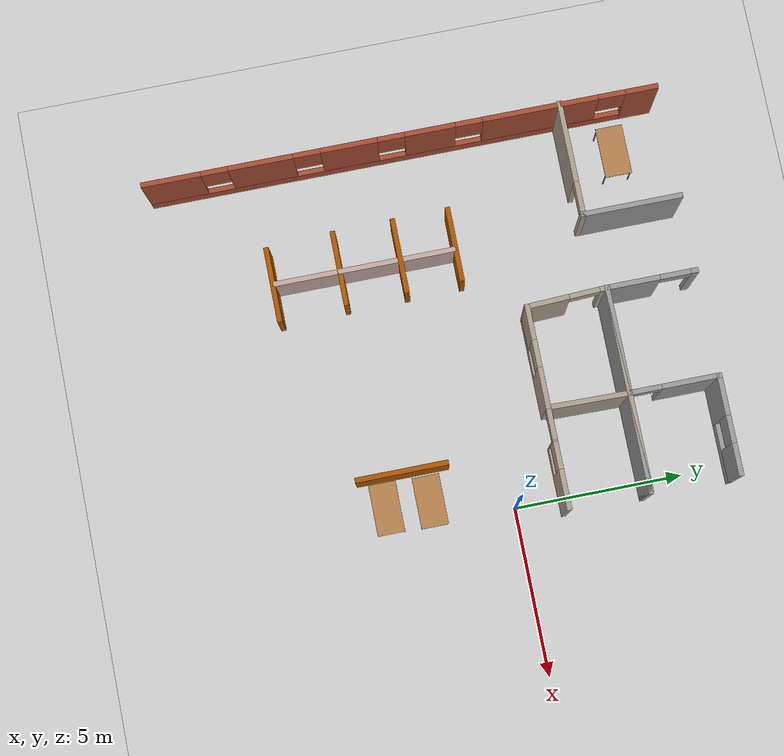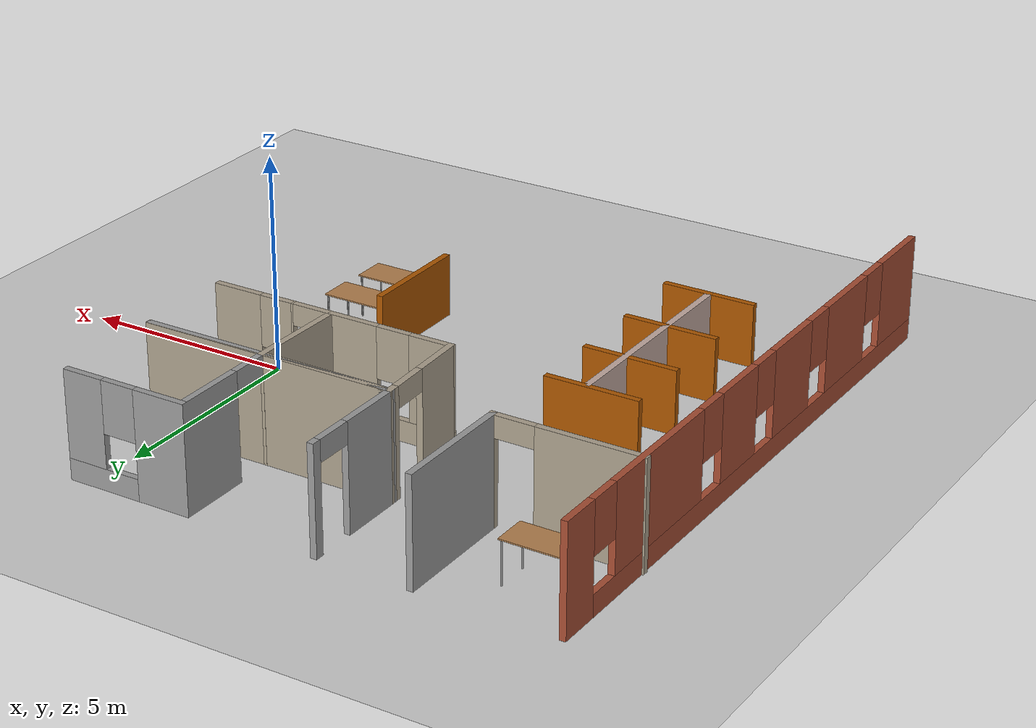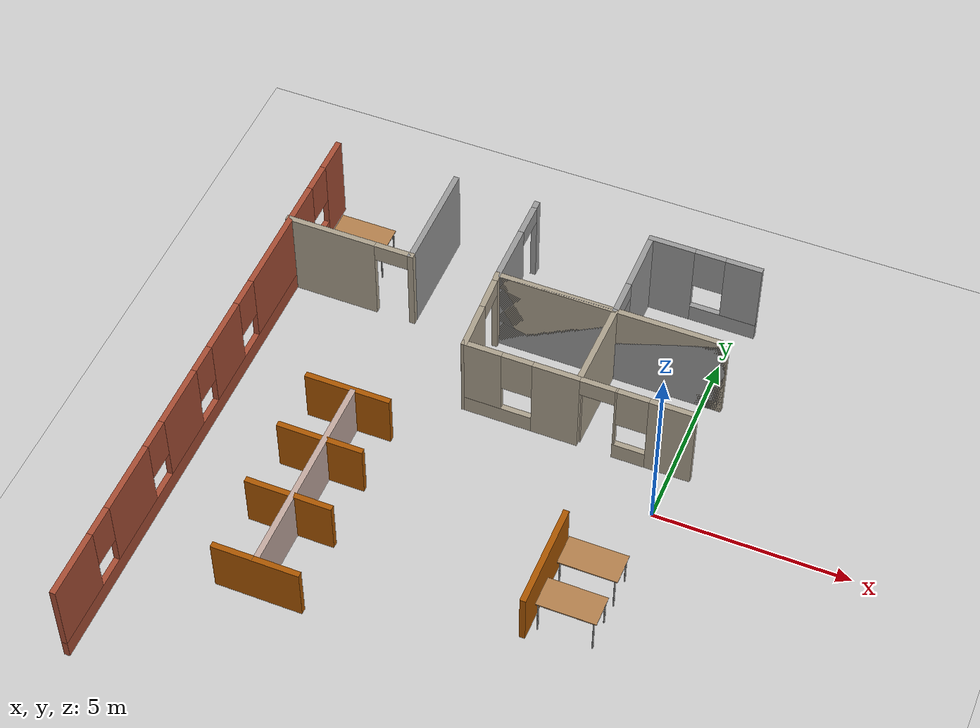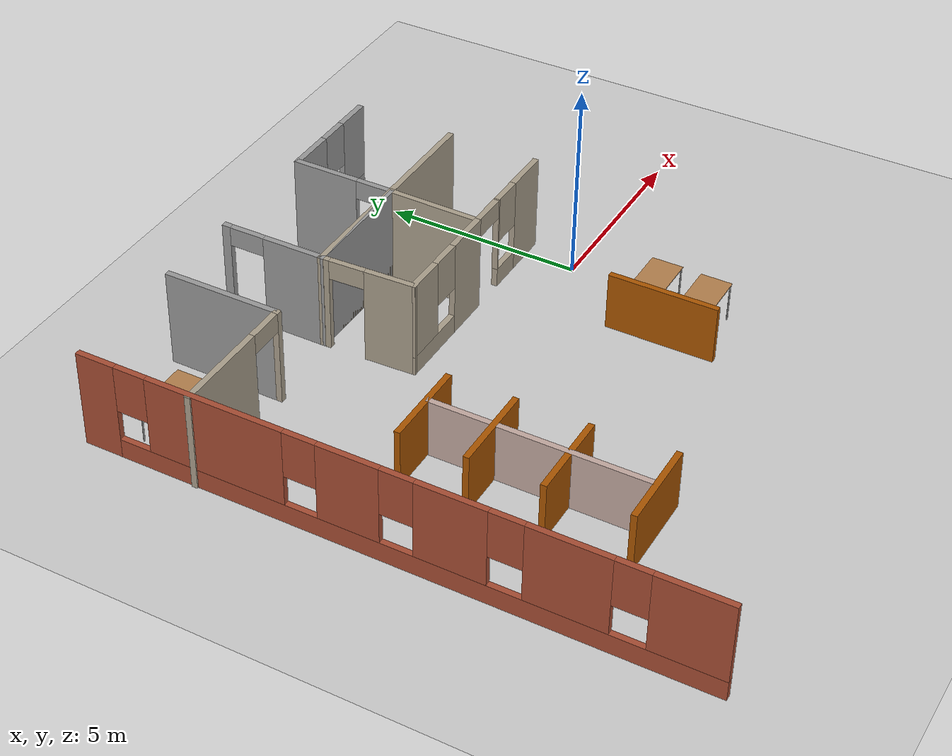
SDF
<sdf version="1.6">
 <world name="default">
  <model name="ground_plane">
   <static>1</static>
   <link name="link">
    <collision name="collision">
     <geometry><plane><normal>0 0 1</normal><size>100 100</size></plane></geometry>
     <surface>
      <contact><collide_bitmask>65535</collide_bitmask></contact>
      <friction><ode><mu>100</mu><mu2>50</mu2></ode></friction>
     </surface>
    </collision>
    <visual name="visual">
     <cast_shadows>0</cast_shadows>
     <geometry><plane><normal>0 0 1</normal><size>100 100</size></plane></geometry>
     <material>
      <script><uri>file://media/materials/scripts/gazebo.material</uri><name>Gazebo/Grey</name></script>
     </material>
    </visual>
   </link>
  </model>
  <model name="officespace">
   <pose>0.84701 -1.22405 0 0 -0 0</pose>
   <link name="Wall_11">
    <pose>-11.906 -0.005499 0 0 0 -1.5708</pose>
    <visual name="Wall_11_Visual_0">
     <pose>-7.1375 0 1.25 0 -0 0</pose>
     <geometry><box><size>0.975 0.15 2.5</size></box></geometry>
     <material>
      <script><uri>file://media/materials/scripts/gazebo.material</uri><name>Gazebo/Bricks</name></script>
      <ambient>0.435294 0.796078 0.67451 1</ambient>
     </material>
     <meta><layer>0</layer></meta>
    </visual>
    <collision name="Wall_11_Collision_0">
     <geometry><box><size>0.975 0.15 2.5</size></box></geometry>
     <pose>-7.1375 0 1.25 0 -0 0</pose>
    </collision>
    <visual name="Wall_11_Visual_1">
     <pose>0.4875 0 0.25 0 -0 0</pose>
     <geometry><box><size>14.275 0.15 0.5</size></box></geometry>
     <material>
      <script><uri>file://media/materials/scripts/gazebo.material</uri><name>Gazebo/Bricks</name></script>
      <ambient>0.435294 0.796078 0.67451 1</ambient>
     </material>
     <meta><layer>0</layer></meta>
    </visual>
    <collision name="Wall_11_Collision_1">
     <geometry><box><size>14.275 0.15 0.5</size></box></geometry>
     <pose>0.4875 0 0.25 0 -0 0</pose>
    </collision>
    <visual name="Wall_11_Visual_2">
     <pose>-4.134 0 1.5 0 -0 0</pose>
     <geometry><box><size>3.432 0.15 2</size></box></geometry>
     <material>
      <script><uri>file://media/materials/scripts/gazebo.material</uri><name>Gazebo/Bricks</name></script>
      <ambient>0.435294 0.796078 0.67451 1</ambient>
     </material>
     <meta><layer>0</layer></meta>
    </visual>
    <collision name="Wall_11_Collision_2">
     <geometry><box><size>3.432 0.15 2</size></box></geometry>
     <pose>-4.134 0 1.5 0 -0 0</pose>
    </collision>
    <visual name="Wall_11_Visual_3">
     <pose>-0.868 0 1.5 0 -0 0</pose>
     <geometry><box><size>1.5 0.15 2</size></box></geometry>
     <material>
      <script><uri>file://media/materials/scripts/gazebo.material</uri><name>Gazebo/Bricks</name></script>
      <ambient>0.435294 0.796078 0.67451 1</ambient>
     </material>
     <meta><layer>0</layer></meta>
    </visual>
    <collision name="Wall_11_Collision_3">
     <geometry><box><size>1.5 0.15 2</size></box></geometry>
     <pose>-0.868 0 1.5 0 -0 0</pose>
    </collision>
    <visual name="Wall_11_Visual_4">
     <pose>1.524 0 1.5 0 -0 0</pose>
     <geometry><box><size>1.684 0.15 2</size></box></geometry>
     <material>
      <script><uri>file://media/materials/scripts/gazebo.material</uri><name>Gazebo/Bricks</name></script>
      <ambient>0.435294 0.796078 0.67451 1</ambient>
     </material>
     <meta><layer>0</layer></meta>
    </visual>
    <collision name="Wall_11_Collision_4">
     <geometry><box><size>1.684 0.15 2</size></box></geometry>
     <pose>1.524 0 1.5 0 -0 0</pose>
    </collision>
    <visual name="Wall_11_Visual_5">
     <pose>4.123 0 1.5 0 -0 0</pose>
     <geometry><box><size>1.914 0.15 2</size></box></geometry>
     <material>
      <script><uri>file://media/materials/scripts/gazebo.material</uri><name>Gazebo/Bricks</name></script>
      <ambient>0.435294 0.796078 0.67451 1</ambient>
     </material>
     <meta><layer>0</layer></meta>
    </visual>
    <collision name="Wall_11_Collision_5">
     <geometry><box><size>1.914 0.15 2</size></box></geometry>
     <pose>4.123 0 1.5 0 -0 0</pose>
    </collision>
    <visual name="Wall_11_Visual_6">
     <pose>6.7525 0 1.5 0 -0 0</pose>
     <geometry><box><size>1.745 0.15 2</size></box></geometry>
     <material>
      <script><uri>file://media/materials/scripts/gazebo.material</uri><name>Gazebo/Bricks</name></script>
      <ambient>0.435294 0.796078 0.67451 1</ambient>
     </material>
     <meta><layer>0</layer></meta>
    </visual>
    <collision name="Wall_11_Collision_6">
     <geometry><box><size>1.745 0.15 2</size></box></geometry>
     <pose>6.7525 0 1.5 0 -0 0</pose>
    </collision>
    <visual name="Wall_11_Visual_7">
     <pose>-6.25 0 1.9 0 -0 0</pose>
     <geometry><box><size>0.8 0.15 1.2</size></box></geometry>
     <material>
      <script><uri>file://media/materials/scripts/gazebo.material</uri><name>Gazebo/Bricks</name></script>
      <ambient>0.435294 0.796078 0.67451 1</ambient>
     </material>
     <meta><layer>0</layer></meta>
    </visual>
    <collision name="Wall_11_Collision_7">
     <geometry><box><size>0.8 0.15 1.2</size></box></geometry>
     <pose>-6.25 0 1.9 0 -0 0</pose>
    </collision>
    <visual name="Wall_11_Visual_8">
     <pose>-2.018 0 1.9 0 -0 0</pose>
     <geometry><box><size>0.8 0.15 1.2</size></box></geometry>
     <material>
      <script><uri>file://media/materials/scripts/gazebo.material</uri><name>Gazebo/Bricks</name></script>
      <ambient>0.435294 0.796078 0.67451 1</ambient>
     </material>
     <meta><layer>0</layer></meta>
    </visual>
    <collision name="Wall_11_Collision_8">
     <geometry><box><size>0.8 0.15 1.2</size></box></geometry>
     <pose>-2.018 0 1.9 0 -0 0</pose>
    </collision>
    <visual name="Wall_11_Visual_9">
     <pose>0.282 0 1.9 0 -0 0</pose>
     <geometry><box><size>0.8 0.15 1.2</size></box></geometry>
     <material>
      <script><uri>file://media/materials/scripts/gazebo.material</uri><name>Gazebo/Bricks</name></script>
      <ambient>0.435294 0.796078 0.67451 1</ambient>
     </material>
     <meta><layer>0</layer></meta>
    </visual>
    <collision name="Wall_11_Collision_9">
     <geometry><box><size>0.8 0.15 1.2</size></box></geometry>
     <pose>0.282 0 1.9 0 -0 0</pose>
    </collision>
    <visual name="Wall_11_Visual_10">
     <pose>2.766 0 1.9 0 -0 0</pose>
     <geometry><box><size>0.8 0.15 1.2</size></box></geometry>
     <material>
      <script><uri>file://media/materials/scripts/gazebo.material</uri><name>Gazebo/Bricks</name></script>
      <ambient>0.435294 0.796078 0.67451 1</ambient>
     </material>
     <meta><layer>0</layer></meta>
    </visual>
    <collision name="Wall_11_Collision_10">
     <geometry><box><size>0.8 0.15 1.2</size></box></geometry>
     <pose>2.766 0 1.9 0 -0 0</pose>
    </collision>
    <visual name="Wall_11_Visual_11">
     <pose>5.48 0 1.9 0 -0 0</pose>
     <geometry><box><size>0.8 0.15 1.2</size></box></geometry>
     <material>
      <script><uri>file://media/materials/scripts/gazebo.material</uri><name>Gazebo/Bricks</name></script>
      <ambient>0.435294 0.796078 0.67451 1</ambient>
     </material>
     <meta><layer>0</layer></meta>
    </visual>
    <collision name="Wall_11_Collision_11">
     <geometry><box><size>0.8 0.15 1.2</size></box></geometry>
     <pose>5.48 0 1.9 0 -0 0</pose>
    </collision>
   </link>
   <link name="Wall_13">
    <collision name="Wall_13_Collision">
     <geometry><box><size>3 0.15 2.5</size></box></geometry>
     <pose>0 0 1.25 0 -0 0</pose>
    </collision>
    <visual name="Wall_13_Visual">
     <pose>0 0 1.25 0 -0 0</pose>
     <geometry><box><size>3 0.15 2.5</size></box></geometry>
     <material>
      <script><uri>file://media/materials/scripts/gazebo.material</uri><name>Gazebo/Grey</name></script>
      <ambient>1 1 1 1</ambient>
     </material>
     <meta><layer>0</layer></meta>
    </visual>
    <pose>-8.594 6.1305 0 0 0 -1.5708</pose>
   </link>
   <link name="Wall_14">
    <pose>-10.269 4.7055 0 0 -0 3.14159</pose>
    <visual name="Wall_14_Visual_0">
     <pose>-1.673 0 1.25 0 -0 0</pose>
     <geometry><box><size>0.154 0.15 2.5</size></box></geometry>
     <material>
      <script><uri>file://media/materials/scripts/gazebo.material</uri><name>Gazebo/Grey</name></script>
      <ambient>0.666667 0.623529 0.54902 1</ambient>
     </material>
     <meta><layer>0</layer></meta>
    </visual>
    <collision name="Wall_14_Collision_0">
     <geometry><box><size>0.154 0.15 2.5</size></box></geometry>
     <pose>-1.673 0 1.25 0 -0 0</pose>
    </collision>
    <visual name="Wall_14_Visual_1">
     <pose>0.527 0 1.25 0 -0 0</pose>
     <geometry><box><size>2.446 0.15 2.5</size></box></geometry>
     <material>
      <script><uri>file://media/materials/scripts/gazebo.material</uri><name>Gazebo/Grey</name></script>
      <ambient>0.666667 0.623529 0.54902 1</ambient>
     </material>
     <meta><layer>0</layer></meta>
    </visual>
    <collision name="Wall_14_Collision_1">
     <geometry><box><size>2.446 0.15 2.5</size></box></geometry>
     <pose>0.527 0 1.25 0 -0 0</pose>
    </collision>
    <visual name="Wall_14_Visual_2">
     <pose>-1.146 0 2.25 0 -0 0</pose>
     <geometry><box><size>0.9 0.15 0.5</size></box></geometry>
     <material>
      <script><uri>file://media/materials/scripts/gazebo.material</uri><name>Gazebo/Grey</name></script>
      <ambient>0.666667 0.623529 0.54902 1</ambient>
     </material>
     <meta><layer>0</layer></meta>
    </visual>
    <collision name="Wall_14_Collision_2">
     <geometry><box><size>0.9 0.15 0.5</size></box></geometry>
     <pose>-1.146 0 2.25 0 -0 0</pose>
    </collision>
   </link>
   <link name="Wall_19">
    <pose>-6.363 6.2325 0 0 0 -1.5708</pose>
    <visual name="Wall_19_Visual_0">
     <pose>-1.2635 0 1.25 0 -0 0</pose>
     <geometry><box><size>0.223 0.15 2.5</size></box></geometry>
     <material>
      <script><uri>file://media/materials/scripts/gazebo.material</uri><name>Gazebo/Grey</name></script>
      <ambient>1 1 1 1</ambient>
     </material>
     <meta><layer>0</layer></meta>
    </visual>
    <collision name="Wall_19_Collision_0">
     <geometry><box><size>0.223 0.15 2.5</size></box></geometry>
     <pose>-1.2635 0 1.25 0 -0 0</pose>
    </collision>
    <visual name="Wall_19_Visual_1">
     <pose>0.5615 0 1.25 0 -0 0</pose>
     <geometry><box><size>1.627 0.15 2.5</size></box></geometry>
     <material>
      <script><uri>file://media/materials/scripts/gazebo.material</uri><name>Gazebo/Grey</name></script>
      <ambient>1 1 1 1</ambient>
     </material>
     <meta><layer>0</layer></meta>
    </visual>
    <collision name="Wall_19_Collision_1">
     <geometry><box><size>1.627 0.15 2.5</size></box></geometry>
     <pose>0.5615 0 1.25 0 -0 0</pose>
    </collision>
    <visual name="Wall_19_Visual_2">
     <pose>-0.702 0 2.25 0 -0 0</pose>
     <geometry><box><size>0.9 0.15 0.5</size></box></geometry>
     <material>
      <script><uri>file://media/materials/scripts/gazebo.material</uri><name>Gazebo/Grey</name></script>
      <ambient>1 1 1 1</ambient>
     </material>
     <meta><layer>0</layer></meta>
    </visual>
    <collision name="Wall_19_Collision_2">
     <geometry><box><size>0.9 0.15 0.5</size></box></geometry>
     <pose>-0.702 0 2.25 0 -0 0</pose>
    </collision>
   </link>
   <link name="Wall_20">
    <collision name="Wall_20_Collision">
     <geometry><box><size>3.25 0.15 2.5</size></box></geometry>
     <pose>0 0 1.25 0 -0 0</pose>
    </collision>
    <visual name="Wall_20_Visual">
     <pose>0 0 1.25 0 -0 0</pose>
     <geometry><box><size>3.25 0.15 2.5</size></box></geometry>
     <material>
      <script><uri>file://media/materials/scripts/gazebo.material</uri><name>Gazebo/Grey</name></script>
      <ambient>1 1 1 1</ambient>
     </material>
     <meta><layer>0</layer></meta>
    </visual>
    <pose>-4.813 4.9325 0 0 -0 0</pose>
   </link>
   <link name="Wall_21">
    <pose>-3.263 6.2325 0 0 -0 1.5708</pose>
    <visual name="Wall_21_Visual_0">
     <pose>-1.3205 0 1.25 0 -0 0</pose>
     <geometry><box><size>0.109 0.15 2.5</size></box></geometry>
     <material>
      <script><uri>file://media/materials/scripts/gazebo.material</uri><name>Gazebo/Grey</name></script>
      <ambient>1 1 1 1</ambient>
     </material>
     <meta><layer>0</layer></meta>
    </visual>
    <collision name="Wall_21_Collision_0">
     <geometry><box><size>0.109 0.15 2.5</size></box></geometry>
     <pose>-1.3205 0 1.25 0 -0 0</pose>
    </collision>
    <visual name="Wall_21_Visual_1">
     <pose>0.5045 0 1.25 0 -0 0</pose>
     <geometry><box><size>1.741 0.15 2.5</size></box></geometry>
     <material>
      <script><uri>file://media/materials/scripts/gazebo.material</uri><name>Gazebo/Grey</name></script>
      <ambient>1 1 1 1</ambient>
     </material>
     <meta><layer>0</layer></meta>
    </visual>
    <collision name="Wall_21_Collision_1">
     <geometry><box><size>1.741 0.15 2.5</size></box></geometry>
     <pose>0.5045 0 1.25 0 -0 0</pose>
    </collision>
    <visual name="Wall_21_Visual_2">
     <pose>-0.816 0 2.25 0 -0 0</pose>
     <geometry><box><size>0.9 0.15 0.5</size></box></geometry>
     <material>
      <script><uri>file://media/materials/scripts/gazebo.material</uri><name>Gazebo/Grey</name></script>
      <ambient>1 1 1 1</ambient>
     </material>
     <meta><layer>0</layer></meta>
    </visual>
    <collision name="Wall_21_Collision_2">
     <geometry><box><size>0.9 0.15 0.5</size></box></geometry>
     <pose>-0.816 0 2.25 0 -0 0</pose>
    </collision>
   </link>
   <link name="Wall_22">
    <pose>-1.838 7.5325 0 0 -0 0</pose>
    <visual name="Wall_22_Visual_0">
     <pose>-0.878 0 1.25 0 -0 0</pose>
     <geometry><box><size>1.244 0.15 2.5</size></box></geometry>
     <material>
      <script><uri>file://media/materials/scripts/gazebo.material</uri><name>Gazebo/Grey</name></script>
      <ambient>1 1 1 1</ambient>
     </material>
     <meta><layer>0</layer></meta>
    </visual>
    <collision name="Wall_22_Collision_0">
     <geometry><box><size>1.244 0.15 2.5</size></box></geometry>
     <pose>-0.878 0 1.25 0 -0 0</pose>
    </collision>
    <visual name="Wall_22_Visual_1">
     <pose>0.622 0 0.25 0 -0 0</pose>
     <geometry><box><size>1.756 0.15 0.5</size></box></geometry>
     <material>
      <script><uri>file://media/materials/scripts/gazebo.material</uri><name>Gazebo/Grey</name></script>
      <ambient>1 1 1 1</ambient>
     </material>
     <meta><layer>0</layer></meta>
    </visual>
    <collision name="Wall_22_Collision_1">
     <geometry><box><size>1.756 0.15 0.5</size></box></geometry>
     <pose>0.622 0 0.25 0 -0 0</pose>
    </collision>
    <visual name="Wall_22_Visual_2">
     <pose>1.022 0 1.5 0 -0 0</pose>
     <geometry><box><size>0.956 0.15 2</size></box></geometry>
     <material>
      <script><uri>file://media/materials/scripts/gazebo.material</uri><name>Gazebo/Grey</name></script>
      <ambient>1 1 1 1</ambient>
     </material>
     <meta><layer>0</layer></meta>
    </visual>
    <collision name="Wall_22_Collision_2">
     <geometry><box><size>0.956 0.15 2</size></box></geometry>
     <pose>1.022 0 1.5 0 -0 0</pose>
    </collision>
    <visual name="Wall_22_Visual_3">
     <pose>0.144 0 1.9 0 -0 0</pose>
     <geometry><box><size>0.8 0.15 1.2</size></box></geometry>
     <material>
      <script><uri>file://media/materials/scripts/gazebo.material</uri><name>Gazebo/Grey</name></script>
      <ambient>1 1 1 1</ambient>
     </material>
     <meta><layer>0</layer></meta>
    </visual>
    <collision name="Wall_22_Collision_3">
     <geometry><box><size>0.8 0.15 1.2</size></box></geometry>
     <pose>0.144 0 1.9 0 -0 0</pose>
    </collision>
   </link>
   <link name="Wall_34">
    <pose>-3.338 2.5825 0 0 -0 3.14159</pose>
    <visual name="Wall_34_Visual_0">
     <pose>-2.407 0 1.25 0 -0 0</pose>
     <geometry><box><size>1.186 0.15 2.5</size></box></geometry>
     <material>
      <script><uri>file://media/materials/scripts/gazebo.material</uri><name>Gazebo/Grey</name></script>
      <ambient>0.666667 0.623529 0.54902 1</ambient>
     </material>
     <meta><layer>0</layer></meta>
    </visual>
    <collision name="Wall_34_Collision_0">
     <geometry><box><size>1.186 0.15 2.5</size></box></geometry>
     <pose>-2.407 0 1.25 0 -0 0</pose>
    </collision>
    <visual name="Wall_34_Visual_1">
     <pose>0.543 0 1.25 0 -0 0</pose>
     <geometry><box><size>1.22 0.15 2.5</size></box></geometry>
     <material>
      <script><uri>file://media/materials/scripts/gazebo.material</uri><name>Gazebo/Grey</name></script>
      <ambient>0.666667 0.623529 0.54902 1</ambient>
     </material>
     <meta><layer>0</layer></meta>
    </visual>
    <collision name="Wall_34_Collision_1">
     <geometry><box><size>1.22 0.15 2.5</size></box></geometry>
     <pose>0.543 0 1.25 0 -0 0</pose>
    </collision>
    <visual name="Wall_34_Visual_2">
     <pose>-1.3905 0 0.25 0 -0 0</pose>
     <geometry><box><size>0.847 0.15 0.5</size></box></geometry>
     <material>
      <script><uri>file://media/materials/scripts/gazebo.material</uri><name>Gazebo/Grey</name></script>
      <ambient>0.666667 0.623529 0.54902 1</ambient>
     </material>
     <meta><layer>0</layer></meta>
    </visual>
    <collision name="Wall_34_Collision_2">
     <geometry><box><size>0.847 0.15 0.5</size></box></geometry>
     <pose>-1.3905 0 0.25 0 -0 0</pose>
    </collision>
    <visual name="Wall_34_Visual_3">
     <pose>2.0765 0 0.25 0 -0 0</pose>
     <geometry><box><size>1.847 0.15 0.5</size></box></geometry>
     <material>
      <script><uri>file://media/materials/scripts/gazebo.material</uri><name>Gazebo/Grey</name></script>
      <ambient>0.666667 0.623529 0.54902 1</ambient>
     </material>
     <meta><layer>0</layer></meta>
    </visual>
    <collision name="Wall_34_Collision_3">
     <geometry><box><size>1.847 0.15 0.5</size></box></geometry>
     <pose>2.0765 0 0.25 0 -0 0</pose>
    </collision>
    <visual name="Wall_34_Visual_4">
     <pose>-0.9905 0 1.5 0 -0 0</pose>
     <geometry><box><size>0.047 0.15 2</size></box></geometry>
     <material>
      <script><uri>file://media/materials/scripts/gazebo.material</uri><name>Gazebo/Grey</name></script>
      <ambient>0.666667 0.623529 0.54902 1</ambient>
     </material>
     <meta><layer>0</layer></meta>
    </visual>
    <collision name="Wall_34_Collision_4">
     <geometry><box><size>0.047 0.15 2</size></box></geometry>
     <pose>-0.9905 0 1.5 0 -0 0</pose>
    </collision>
    <visual name="Wall_34_Visual_5">
     <pose>-0.9905 0 1.5 0 -0 0</pose>
     <geometry><box><size>0.047 0.15 2</size></box></geometry>
     <material>
      <script><uri>file://media/materials/scripts/gazebo.material</uri><name>Gazebo/Grey</name></script>
      <ambient>0.666667 0.623529 0.54902 1</ambient>
     </material>
     <meta><layer>0</layer></meta>
    </visual>
    <collision name="Wall_34_Collision_5">
     <geometry><box><size>0.047 0.15 2</size></box></geometry>
     <pose>-0.9905 0 1.5 0 -0 0</pose>
    </collision>
    <visual name="Wall_34_Visual_6">
     <pose>2.4765 0 1.5 0 -0 0</pose>
     <geometry><box><size>1.047 0.15 2</size></box></geometry>
     <material>
      <script><uri>file://media/materials/scripts/gazebo.material</uri><name>Gazebo/Grey</name></script>
      <ambient>0.666667 0.623529 0.54902 1</ambient>
     </material>
     <meta><layer>0</layer></meta>
    </visual>
    <collision name="Wall_34_Collision_6">
     <geometry><box><size>1.047 0.15 2</size></box></geometry>
     <pose>2.4765 0 1.5 0 -0 0</pose>
    </collision>
    <visual name="Wall_34_Visual_7">
     <pose>-1.414 0 1.9 0 -0 0</pose>
     <geometry><box><size>0.8 0.15 1.2</size></box></geometry>
     <material>
      <script><uri>file://media/materials/scripts/gazebo.material</uri><name>Gazebo/Grey</name></script>
      <ambient>0.666667 0.623529 0.54902 1</ambient>
     </material>
     <meta><layer>0</layer></meta>
    </visual>
    <collision name="Wall_34_Collision_7">
     <geometry><box><size>0.8 0.15 1.2</size></box></geometry>
     <pose>-1.414 0 1.9 0 -0 0</pose>
    </collision>
    <visual name="Wall_34_Visual_8">
     <pose>1.553 0 1.9 0 -0 0</pose>
     <geometry><box><size>0.8 0.15 1.2</size></box></geometry>
     <material>
      <script><uri>file://media/materials/scripts/gazebo.material</uri><name>Gazebo/Grey</name></script>
      <ambient>0.666667 0.623529 0.54902 1</ambient>
     </material>
     <meta><layer>0</layer></meta>
    </visual>
    <collision name="Wall_34_Collision_8">
     <geometry><box><size>0.8 0.15 1.2</size></box></geometry>
     <pose>1.553 0 1.9 0 -0 0</pose>
    </collision>
    <visual name="Wall_34_Visual_9">
     <pose>-0.517 0 2.25 0 -0 0</pose>
     <geometry><box><size>0.9 0.15 0.5</size></box></geometry>
     <material>
      <script><uri>file://media/materials/scripts/gazebo.material</uri><name>Gazebo/Grey</name></script>
      <ambient>0.666667 0.623529 0.54902 1</ambient>
     </material>
     <meta><layer>0</layer></meta>
    </visual>
    <collision name="Wall_34_Collision_9">
     <geometry><box><size>0.9 0.15 0.5</size></box></geometry>
     <pose>-0.517 0 2.25 0 -0 0</pose>
    </collision>
    <visual name="Wall_34_Visual_10">
     <pose>-0.517 0 2.25 0 -0 0</pose>
     <geometry><box><size>0.9 0.15 0.5</size></box></geometry>
     <material>
      <script><uri>file://media/materials/scripts/gazebo.material</uri><name>Gazebo/Grey</name></script>
      <ambient>0.666667 0.623529 0.54902 1</ambient>
     </material>
     <meta><layer>0</layer></meta>
    </visual>
    <collision name="Wall_34_Collision_10">
     <geometry><box><size>0.9 0.15 0.5</size></box></geometry>
     <pose>-0.517 0 2.25 0 -0 0</pose>
    </collision>
   </link>
   <link name="Wall_35">
    <pose>-6.313 3.7575 0 0 -0 1.61332</pose>
    <visual name="Wall_35_Visual_0">
     <pose>-0.595199 0 1.25 0 -0 0</pose>
     <geometry><box><size>1.31173 0.15 2.5</size></box></geometry>
     <material>
      <script><uri>file://media/materials/scripts/gazebo.material</uri><name>Gazebo/Grey</name></script>
      <ambient>0.666667 0.623529 0.54902 1</ambient>
     </material>
     <meta><layer>0</layer></meta>
    </visual>
    <collision name="Wall_35_Collision_0">
     <geometry><box><size>1.31173 0.15 2.5</size></box></geometry>
     <pose>-0.595199 0 1.25 0 -0 0</pose>
    </collision>
    <visual name="Wall_35_Visual_1">
     <pose>1.10586 0 1.25 0 -0 0</pose>
     <geometry><box><size>0.290398 0.15 2.5</size></box></geometry>
     <material>
      <script><uri>file://media/materials/scripts/gazebo.material</uri><name>Gazebo/Grey</name></script>
      <ambient>0.666667 0.623529 0.54902 1</ambient>
     </material>
     <meta><layer>0</layer></meta>
    </visual>
    <collision name="Wall_35_Collision_1">
     <geometry><box><size>0.290398 0.15 2.5</size></box></geometry>
     <pose>1.10586 0 1.25 0 -0 0</pose>
    </collision>
    <visual name="Wall_35_Visual_2">
     <pose>0.510666 0 2.25 0 -0 0</pose>
     <geometry><box><size>0.9 0.15 0.5</size></box></geometry>
     <material>
      <script><uri>file://media/materials/scripts/gazebo.material</uri><name>Gazebo/Grey</name></script>
      <ambient>0.666667 0.623529 0.54902 1</ambient>
     </material>
     <meta><layer>0</layer></meta>
    </visual>
    <collision name="Wall_35_Collision_2">
     <geometry><box><size>0.9 0.15 0.5</size></box></geometry>
     <pose>0.510666 0 2.25 0 -0 0</pose>
    </collision>
   </link>
   <link name="Wall_36">
    <collision name="Wall_36_Collision">
     <geometry><box><size>6.1 0.15 2.5</size></box></geometry>
     <pose>0 0 1.25 0 -0 0</pose>
    </collision>
    <visual name="Wall_36_Visual">
     <pose>0 0 1.25 0 -0 0</pose>
     <geometry><box><size>6.1 0.15 2.5</size></box></geometry>
     <material>
      <script><uri>file://media/materials/scripts/gazebo.material</uri><name>Gazebo/Grey</name></script>
      <ambient>0.666667 0.623529 0.54902 1</ambient>
     </material>
     <meta><layer>0</layer></meta>
    </visual>
    <pose>-3.388 4.9325 0 0 -0 0</pose>
   </link>
   <link name="Wall_38">
    <collision name="Wall_38_Collision">
     <geometry><box><size>2.35738 0.15 2.5</size></box></geometry>
     <pose>0 0 1.25 0 -0 0</pose>
    </collision>
    <visual name="Wall_38_Visual">
     <pose>0 0 1.25 0 -0 0</pose>
     <geometry><box><size>2.35738 0.15 2.5</size></box></geometry>
     <material>
      <script><uri>file://media/materials/scripts/gazebo.material</uri><name>Gazebo/Grey</name></script>
      <ambient>0.666667 0.623529 0.54902 1</ambient>
     </material>
     <meta><layer>0</layer></meta>
    </visual>
    <pose>-3.2835 3.829 0 0 -0 1.55222</pose>
   </link>
   <link name="Wall_39">
    <collision name="Wall_39_Collision">
     <geometry><box><size>3 0.15 2.5</size></box></geometry>
     <pose>0 0 1.25 0 -0 0</pose>
    </collision>
    <visual name="Wall_39_Visual">
     <pose>0 0 1.25 0 -0 0</pose>
     <geometry><box><size>3 0.15 2.5</size></box></geometry>
     <material>
      <script><uri>file://media/materials/scripts/gazebo.material</uri><name>Gazebo/Grey</name></script>
      <ambient>1 1 1 1</ambient>
     </material>
     <meta><layer>0</layer></meta>
    </visual>
    <pose>-1.838 4.9325 0 0 -0 0</pose>
   </link>
   <link name="Wall_43">
    <collision name="Wall_43_Collision">
     <geometry><box><size>5.5 0.15 1.5</size></box></geometry>
     <pose>0 0 0.75 0 -0 0</pose>
    </collision>
    <visual name="Wall_43_Visual">
     <pose>0 0 0.75 0 -0 0</pose>
     <geometry><box><size>5.5 0.15 1.5</size></box></geometry>
     <material>
      <script><uri>file://media/materials/scripts/gazebo.material</uri><name>Gazebo/Grey</name></script>
      <ambient>0.760784 0.662745 0.627451 1</ambient>
     </material>
     <meta><layer>0</layer></meta>
    </visual>
    <pose>-8.52453 -1.78956 0 0 0 -1.5708</pose>
   </link>
   <link name="Wall_45">
    <collision name="Wall_45_Collision">
     <geometry><box><size>2.25 0.15 1.5</size></box></geometry>
     <pose>0 0 0.75 0 -0 0</pose>
    </collision>
    <visual name="Wall_45_Visual">
     <pose>0 0 0.75 0 -0 0</pose>
     <geometry><box><size>2.25 0.15 1.5</size></box></geometry>
     <material>
      <script><uri>file://media/materials/scripts/gazebo.material</uri><name>Gazebo/Grey</name></script>
      <ambient>0.666667 0.333333 0 1</ambient>
     </material>
     <meta><layer>0</layer></meta>
    </visual>
    <pose>-8.52153 -4.47767 0 0 -0 0</pose>
   </link>
   <link name="Wall_47">
    <collision name="Wall_47_Collision">
     <geometry><box><size>2.25 0.15 1.5</size></box></geometry>
     <pose>0 0 0.75 0 -0 0</pose>
    </collision>
    <visual name="Wall_47_Visual">
     <pose>0 0 0.75 0 -0 0</pose>
     <geometry><box><size>2.25 0.15 1.5</size></box></geometry>
     <material>
      <script><uri>file://media/materials/scripts/gazebo.material</uri><name>Gazebo/Grey</name></script>
      <ambient>0.666667 0.333333 0 1</ambient>
     </material>
     <meta><layer>0</layer></meta>
    </visual>
    <pose>-8.62453 -2.48447 0 0 -0 0</pose>
   </link>
   <link name="Wall_49">
    <collision name="Wall_49_Collision">
     <geometry><box><size>2.25 0.15 1.5</size></box></geometry>
     <pose>0 0 0.75 0 -0 0</pose>
    </collision>
    <visual name="Wall_49_Visual">
     <pose>0 0 0.75 0 -0 0</pose>
     <geometry><box><size>2.25 0.15 1.5</size></box></geometry>
     <material>
      <script><uri>file://media/materials/scripts/gazebo.material</uri><name>Gazebo/Grey</name></script>
      <ambient>0.666667 0.333333 0 1</ambient>
     </material>
     <meta><layer>0</layer></meta>
    </visual>
    <pose>-8.64752 -0.687096 0 0 -0 0</pose>
   </link>
   <link name="Wall_51">
    <collision name="Wall_51_Collision">
     <geometry><box><size>2.25 0.15 1.5</size></box></geometry>
     <pose>0 0 0.75 0 -0 0</pose>
    </collision>
    <visual name="Wall_51_Visual">
     <pose>0 0 0.75 0 -0 0</pose>
     <geometry><box><size>2.25 0.15 1.5</size></box></geometry>
     <material>
      <script><uri>file://media/materials/scripts/gazebo.material</uri><name>Gazebo/Grey</name></script>
      <ambient>0.666667 0.333333 0 1</ambient>
     </material>
     <meta><layer>0</layer></meta>
    </visual>
    <pose>-8.67052 0.960193 0 0 -0 0</pose>
   </link>
   <link name="Wall_55">
    <collision name="Wall_55_Collision">
     <geometry><box><size>2.75 0.15 1.5</size></box></geometry>
     <pose>0 0 0.75 0 -0 0</pose>
    </collision>
    <visual name="Wall_55_Visual">
     <pose>0 0 0.75 0 -0 0</pose>
     <geometry><box><size>2.75 0.15 1.5</size></box></geometry>
     <material>
      <script><uri>file://media/materials/scripts/gazebo.material</uri><name>Gazebo/Grey</name></script>
      <ambient>0.666667 0.333333 0 1</ambient>
     </material>
     <meta><layer>0</layer></meta>
    </visual>
    <pose>-2.42952 -1.84056 0 0 0 -1.5708</pose>
   </link>
   <static>1</static>
  </model>
  <model name="table_clone_1">
   <static>1</static>
   <link name="link">
    <collision name="surface">
     <pose>0 0 1 0 -0 0</pose>
     <geometry><box><size>1.5 0.8 0.03</size></box></geometry>
     <surface><friction><ode><mu>0.6</mu><mu2>0.6</mu2></ode></friction></surface>
    </collision>
    <visual name="visual1">
     <pose>0 0 1 0 -0 0</pose>
     <geometry><box><size>1.5 0.8 0.03</size></box></geometry>
     <material>
      <script><uri>file://media/materials/scripts/gazebo.material</uri><name>Gazebo/Wood</name></script>
     </material>
    </visual>
    <collision name="front_left_leg">
     <pose>0.68 0.38 0.5 0 -0 0</pose>
     <geometry><cylinder><radius>0.02</radius><length>1</length></cylinder></geometry>
    </collision>
    <visual name="front_left_leg">
     <pose>0.68 0.38 0.5 0 -0 0</pose>
     <geometry><cylinder><radius>0.02</radius><length>1</length></cylinder></geometry>
     <material>
      <script><uri>file://media/materials/scripts/gazebo.material</uri><name>Gazebo/Grey</name></script>
     </material>
    </visual>
    <collision name="front_right_leg">
     <pose>0.68 -0.38 0.5 0 -0 0</pose>
     <geometry><cylinder><radius>0.02</radius><length>1</length></cylinder></geometry>
    </collision>
    <visual name="front_right_leg">
     <pose>0.68 -0.38 0.5 0 -0 0</pose>
     <geometry><cylinder><radius>0.02</radius><length>1</length></cylinder></geometry>
     <material>
      <script><uri>file://media/materials/scripts/gazebo.material</uri><name>Gazebo/Grey</name></script>
     </material>
    </visual>
    <collision name="back_right_leg">
     <pose>-0.68 -0.38 0.5 0 -0 0</pose>
     <geometry><cylinder><radius>0.02</radius><length>1</length></cylinder></geometry>
    </collision>
    <visual name="back_right_leg">
     <pose>-0.68 -0.38 0.5 0 -0 0</pose>
     <geometry><cylinder><radius>0.02</radius><length>1</length></cylinder></geometry>
     <material>
      <script><uri>file://media/materials/scripts/gazebo.material</uri><name>Gazebo/Grey</name></script>
     </material>
    </visual>
    <collision name="back_left_leg">
     <pose>-0.68 0.38 0.5 0 -0 0</pose>
     <geometry><cylinder><radius>0.02</radius><length>1</length></cylinder></geometry>
    </collision>
    <visual name="back_left_leg">
     <pose>-0.68 0.38 0.5 0 -0 0</pose>
     <geometry><cylinder><radius>0.02</radius><length>1</length></cylinder></geometry>
     <material>
      <script><uri>file://media/materials/scripts/gazebo.material</uri><name>Gazebo/Grey</name></script>
     </material>
    </visual>
   </link>
   <pose>-0.657191 -3.70163 0 0 -0 0</pose>
  </model>
  <model name="table_clone_2">
   <static>1</static>
   <link name="link">
    <collision name="surface">
     <pose>0 0 1 0 -0 0</pose>
     <geometry><box><size>1.5 0.8 0.03</size></box></geometry>
     <surface><friction><ode><mu>0.6</mu><mu2>0.6</mu2></ode></friction></surface>
    </collision>
    <visual name="visual1">
     <pose>0 0 1 0 -0 0</pose>
     <geometry><box><size>1.5 0.8 0.03</size></box></geometry>
     <material>
      <script><uri>file://media/materials/scripts/gazebo.material</uri><name>Gazebo/Wood</name></script>
     </material>
    </visual>
    <collision name="front_left_leg">
     <pose>0.68 0.38 0.5 0 -0 0</pose>
     <geometry><cylinder><radius>0.02</radius><length>1</length></cylinder></geometry>
    </collision>
    <visual name="front_left_leg">
     <pose>0.68 0.38 0.5 0 -0 0</pose>
     <geometry><cylinder><radius>0.02</radius><length>1</length></cylinder></geometry>
     <material>
      <script><uri>file://media/materials/scripts/gazebo.material</uri><name>Gazebo/Grey</name></script>
     </material>
    </visual>
    <collision name="front_right_leg">
     <pose>0.68 -0.38 0.5 0 -0 0</pose>
     <geometry><cylinder><radius>0.02</radius><length>1</length></cylinder></geometry>
    </collision>
    <visual name="front_right_leg">
     <pose>0.68 -0.38 0.5 0 -0 0</pose>
     <geometry><cylinder><radius>0.02</radius><length>1</length></cylinder></geometry>
     <material>
      <script><uri>file://media/materials/scripts/gazebo.material</uri><name>Gazebo/Grey</name></script>
     </material>
    </visual>
    <collision name="back_right_leg">
     <pose>-0.68 -0.38 0.5 0 -0 0</pose>
     <geometry><cylinder><radius>0.02</radius><length>1</length></cylinder></geometry>
    </collision>
    <visual name="back_right_leg">
     <pose>-0.68 -0.38 0.5 0 -0 0</pose>
     <geometry><cylinder><radius>0.02</radius><length>1</length></cylinder></geometry>
     <material>
      <script><uri>file://media/materials/scripts/gazebo.material</uri><name>Gazebo/Grey</name></script>
     </material>
    </visual>
    <collision name="back_left_leg">
     <pose>-0.68 0.38 0.5 0 -0 0</pose>
     <geometry><cylinder><radius>0.02</radius><length>1</length></cylinder></geometry>
    </collision>
    <visual name="back_left_leg">
     <pose>-0.68 0.38 0.5 0 -0 0</pose>
     <geometry><cylinder><radius>0.02</radius><length>1</length></cylinder></geometry>
     <material>
      <script><uri>file://media/materials/scripts/gazebo.material</uri><name>Gazebo/Grey</name></script>
     </material>
    </visual>
   </link>
   <pose>-0.619223 -2.42462 0 0 -0 0</pose>
  </model>
  <model name="table_clone_4">
   <static>1</static>
   <link name="link">
    <collision name="surface">
     <pose>0 0 1 0 -0 0</pose>
     <geometry><box><size>1.5 0.8 0.03</size></box></geometry>
     <surface><friction><ode><mu>0.6</mu><mu2>0.6</mu2></ode></friction></surface>
    </collision>
    <visual name="visual1">
     <pose>0 0 1 0 -0 0</pose>
     <geometry><box><size>1.5 0.8 0.03</size></box></geometry>
     <material>
      <script><uri>file://media/materials/scripts/gazebo.material</uri><name>Gazebo/Wood</name></script>
     </material>
    </visual>
    <collision name="front_left_leg">
     <pose>0.68 0.38 0.5 0 -0 0</pose>
     <geometry><cylinder><radius>0.02</radius><length>1</length></cylinder></geometry>
    </collision>
    <visual name="front_left_leg">
     <pose>0.68 0.38 0.5 0 -0 0</pose>
     <geometry><cylinder><radius>0.02</radius><length>1</length></cylinder></geometry>
     <material>
      <script><uri>file://media/materials/scripts/gazebo.material</uri><name>Gazebo/Grey</name></script>
     </material>
    </visual>
    <collision name="front_right_leg">
     <pose>0.68 -0.38 0.5 0 -0 0</pose>
     <geometry><cylinder><radius>0.02</radius><length>1</length></cylinder></geometry>
    </collision>
    <visual name="front_right_leg">
     <pose>0.68 -0.38 0.5 0 -0 0</pose>
     <geometry><cylinder><radius>0.02</radius><length>1</length></cylinder></geometry>
     <material>
      <script><uri>file://media/materials/scripts/gazebo.material</uri><name>Gazebo/Grey</name></script>
     </material>
    </visual>
    <collision name="back_right_leg">
     <pose>-0.68 -0.38 0.5 0 -0 0</pose>
     <geometry><cylinder><radius>0.02</radius><length>1</length></cylinder></geometry>
    </collision>
    <visual name="back_right_leg">
     <pose>-0.68 -0.38 0.5 0 -0 0</pose>
     <geometry><cylinder><radius>0.02</radius><length>1</length></cylinder></geometry>
     <material>
      <script><uri>file://media/materials/scripts/gazebo.material</uri><name>Gazebo/Grey</name></script>
     </material>
    </visual>
    <collision name="back_left_leg">
     <pose>-0.68 0.38 0.5 0 -0 0</pose>
     <geometry><cylinder><radius>0.02</radius><length>1</length></cylinder></geometry>
    </collision>
    <visual name="back_left_leg">
     <pose>-0.68 0.38 0.5 0 -0 0</pose>
     <geometry><cylinder><radius>0.02</radius><length>1</length></cylinder></geometry>
     <material>
      <script><uri>file://media/materials/scripts/gazebo.material</uri><name>Gazebo/Grey</name></script>
     </material>
    </visual>
   </link>
   <pose>-9.77506 4.94339 0 0 -0 0</pose>
  </model>
 </world>
</sdf>
